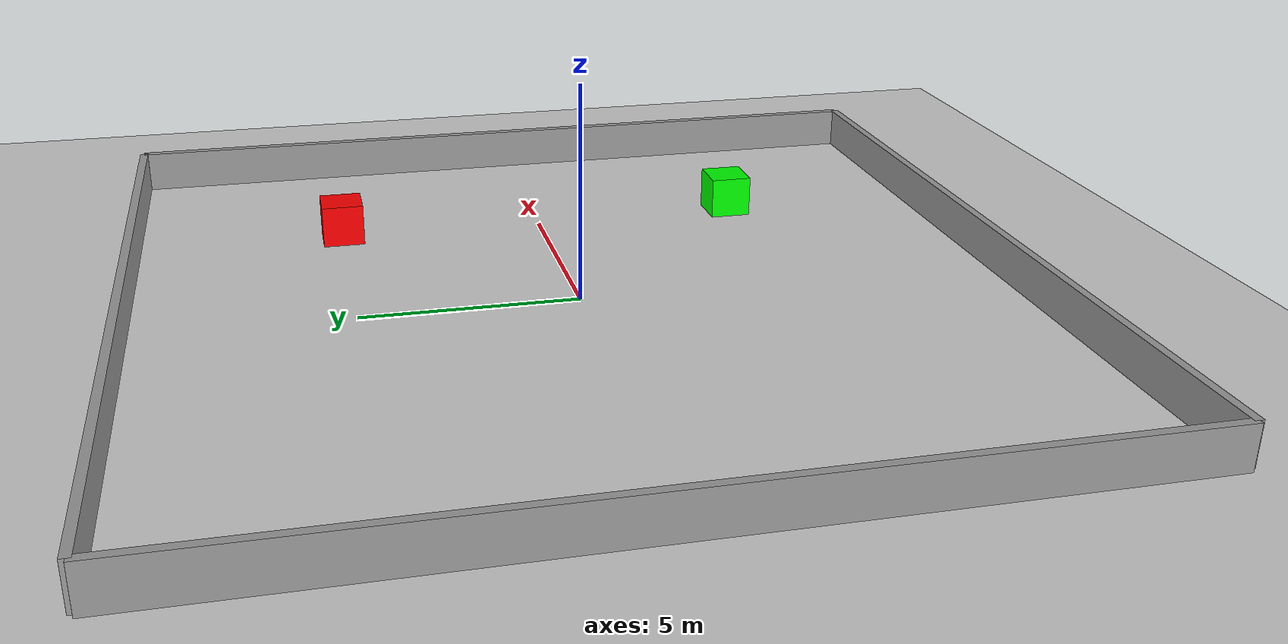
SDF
<sdf version='1.7'>
  <world name='planar_moving_box_world'>
    <plugin name='gazebo_ros_api_plugin' filename='libgazebo_ros_api_plugin.so'>
      <ros>
        <namespace>/</namespace>
      </ros>
    </plugin>

    <!-- Plano do chão -->
    <model name='ground_plane'>
      <static>1</static>
      <link name='link'>
        <collision name='collision'>
          <geometry>
            <plane>
              <normal>0 0 1</normal>
              <size>100 100</size>
            </plane>
          </geometry>
          <surface>
            <friction>
              <ode>
                <mu>100</mu>
                <mu2>50</mu2>
              </ode>
              <torsional><ode/></torsional>
            </friction>
            <contact><ode/></contact>
            <bounce/>
          </surface>
          <max_contacts>10</max_contacts>
        </collision>
        <visual name='visual'>
          <cast_shadows>0</cast_shadows>
          <geometry>
            <plane>
              <normal>0 0 1</normal>
              <size>100 100</size>
            </plane>
          </geometry>
          <material>
            <script>
              <uri>file://media/materials/scripts/gazebo.material</uri>
              <name>Gazebo/Grey</name>
            </script>
          </material>
        </visual>
      </link>
    </model>

    <!-- Luz do sol -->
    <light name='sun' type='directional'>
      <cast_shadows>1</cast_shadows>
      <pose>0 0 10 0 0 0</pose>
      <diffuse>0.8 0.8 0.8 1</diffuse>
      <specular>0.2 0.2 0.2 1</specular>
      <attenuation>
        <range>1000</range>
        <constant>0.9</constant>
        <linear>0.01</linear>
        <quadratic>0.001</quadratic>
      </attenuation>
      <direction>-0.5 0.1 -0.9</direction>
    </light>

    <!-- box_triangle -->
    <model name='box_triangle'>
      <static>0</static>
      <link name='box_link_triangle'>
        <pose>5 5 0.5 0 0 0</pose>
        <inertial>
          <mass>1</mass>
          <inertia>
            <ixx>1</ixx><iyy>1</iyy><izz>1</izz>
            <ixy>0</ixy><ixz>0</ixz><iyz>0</iyz>
          </inertia>
        </inertial>
        <collision name='collision'>
          <geometry><box><size>1 1 1</size></box></geometry>
        </collision>
        <visual name='visual'>
          <geometry><box><size>1 1 1</size></box></geometry>
          <material><ambient>1 0 0 1</ambient></material> <!-- vermelho -->
        </visual>
      </link>
      <plugin name='triangle_plugin' filename='libgazebo_ros_planar_move.so'>
        <bodyName>box_link_triangle</bodyName>
        <max_velocity>1.0</max_velocity>
        <min_velocity>-1.0</min_velocity>
        <commandTopic>/box_triangle/cmd_vel</commandTopic>
        <odometryTopic>/box_triangle/odom</odometryTopic>
        <odometryFrame>box_triangle/odom</odometryFrame>
        <robotBaseFrame>box_triangle/base_footprint</robotBaseFrame>
        <odometryRate>20</odometryRate>
        <cmdTimeout>1.0</cmdTimeout>
      </plugin>
    </model>

    <!-- box_square -->
    <model name='box_square'>
      <static>0</static>
      <link name='box_link_square'>
        <pose>5 -5 0.5 0 0 0</pose>
        <inertial>
          <mass>1</mass>
          <inertia>
            <ixx>1</ixx><iyy>1</iyy><izz>1</izz>
            <ixy>0</ixy><ixz>0</ixz><iyz>0</iyz>
          </inertia>
        </inertial>
        <collision name='collision'>
          <geometry><box><size>1 1 1</size></box></geometry>
        </collision>
        <visual name='visual'>
          <geometry><box><size>1 1 1</size></box></geometry>
          <material><ambient>0 1 0 1</ambient></material> <!-- verde -->
        </visual>
      </link>
      <plugin name='square_plugin' filename='libgazebo_ros_planar_move.so'>
        <bodyName>box_link_square</bodyName>
        <max_velocity>1.0</max_velocity>
        <min_velocity>-1.0</min_velocity>
        <commandTopic>/box_square/cmd_vel</commandTopic>
        <odometryTopic>/box_square/odom</odometryTopic>
        <odometryFrame>box_square/odom</odometryFrame>
        <robotBaseFrame>box_square/base_footprint</robotBaseFrame>
        <odometryRate>20</odometryRate>
        <cmdTimeout>1.0</cmdTimeout>
      </plugin>
    </model>

    <!-- Configurações adicionais -->
    <gravity>0 0 -9.8</gravity>
    <physics type='ode'>
      <max_step_size>0.001</max_step_size>
      <real_time_factor>1</real_time_factor>
      <real_time_update_rate>1000</real_time_update_rate>
    </physics>
    <scene>
      <ambient>0.4 0.4 0.4 1</ambient>
      <background>0.7 0.7 0.7 1</background>
      <shadows>1</shadows>
    </scene>
    <wind/>
    <spherical_coordinates>
      <surface_model>EARTH_WGS84</surface_model>
      <latitude_deg>0</latitude_deg>
      <longitude_deg>0</longitude_deg>
      <elevation>0</elevation>
      <heading_deg>0</heading_deg>
    </spherical_coordinates>

    <gui fullscreen='0'>
      <camera name='user_camera'>
        <pose>11 -12 5 0 0.28 2.35</pose>
        <view_controller>orbit</view_controller>
        <projection_type>perspective</projection_type>
      </camera>
    </gui>

    <!-- Parede 1: parede norte -->
<model name='wall_north'>
  <static>1</static>
  <link name='link'>
    <pose>0 10 0.5 0 0 0</pose>
    <collision name='collision'>
      <geometry>
        <box><size>20 0.2 1</size></box>
      </geometry>
    </collision>
    <visual name='visual'>
      <geometry>
        <box><size>20 0.2 1</size></box>
      </geometry>
      <material>
        <ambient>0.6 0.6 0.6 1</ambient>
      </material>
    </visual>
  </link>
</model>

<!-- Parede 2: parede sul -->
<model name='wall_south'>
  <static>1</static>
  <link name='link'>
    <pose>0 -10 0.5 0 0 0</pose>
    <collision name='collision'>
      <geometry>
        <box><size>20 0.2 1</size></box>
      </geometry>
    </collision>
    <visual name='visual'>
      <geometry>
        <box><size>20 0.2 1</size></box>
      </geometry>
      <material>
        <ambient>0.6 0.6 0.6 1</ambient>
      </material>
    </visual>
  </link>
</model>

<!-- Parede 3: parede leste -->
<model name='wall_east'>
  <static>1</static>
  <link name='link'>
    <pose>10 0 0.5 0 0 0</pose>
    <collision name='collision'>
      <geometry>
        <box><size>0.2 20 1</size></box>
      </geometry>
    </collision>
    <visual name='visual'>
      <geometry>
        <box><size>0.2 20 1</size></box>
      </geometry>
      <material>
        <ambient>0.6 0.6 0.6 1</ambient>
      </material>
    </visual>
  </link>
</model>

<!-- Parede 4: parede oeste -->
<model name='wall_west'>
  <static>1</static>
  <link name='link'>
    <pose>-10 0 0.5 0 0 0</pose>
    <collision name='collision'>
      <geometry>
        <box><size>0.2 20 1</size></box>
      </geometry>
    </collision>
    <visual name='visual'>
      <geometry>
        <box><size>0.2 20 1</size></box>
      </geometry>
      <material>
        <ambient>0.6 0.6 0.6 1</ambient>
      </material>
    </visual>
  </link>
</model>

  </world>
</sdf>
